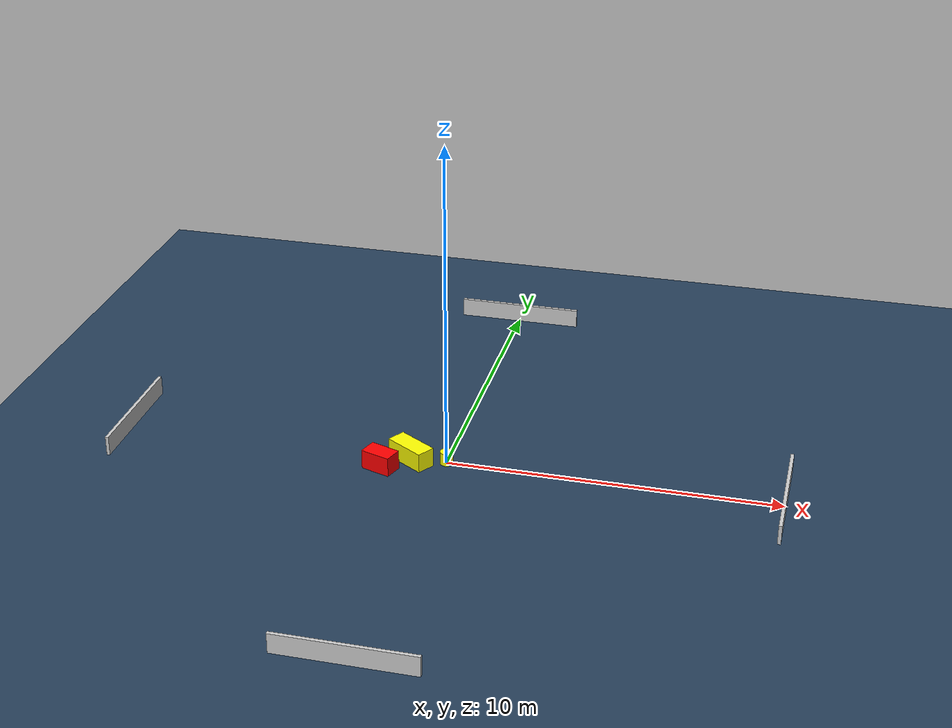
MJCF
<?xml version="1.0" ?>
<mujoco model="generated_environment">
  <option timestep="0.01" integrator="RK4" cone="elliptic"/>
  <default>
    <geom density="1"/>
  </default>
  <asset>
    <texture builtin="gradient" height="3072" name="skybox" rgb1="0.3 0.5 0.7" rgb2="0 0 0" type="skybox" width="512"/>
    <texture builtin="checker" height="300" name="groundplane" rgb1="0.2 0.3 0.4" rgb2="0.1 0.2 0.3" type="2d" width="300"/>
    <material name="groundplane" reflectance="0.2" texrepeat="5 5" texture="groundplane"/>
  </asset>
  <worldbody>
    <light dir="0 0 -1" directional="true" pos="0 0 1.5"/>
    <geom condim="3" friction="0.5 0.005 0.001" material="groundplane" name="floor" pos="0 0 0" size="0 0 0.05" type="plane"/>
    <body name="walls">
      <geom name="wall_1" condim="4" pos="-10.0 0.0 0.3" rgba="0.800000011920929 0.800000011920929 0.800000011920929 1.0" size="0.05 2.0 0.3" type="box"/>
      <geom name="wall_2" condim="4" pos="10.0 0.0 0.3" rgba="0.800000011920929 0.800000011920929 0.800000011920929 1.0" size="0.05 2.0 0.3" type="box"/>
      <geom name="wall_3" condim="4" pos="0.0 -10.0 0.3" rgba="0.800000011920929 0.800000011920929 0.800000011920929 1.0" size="2.0 0.05 0.3" type="box"/>
      <geom name="wall_4" condim="4" pos="0.0 10.0 0.3" rgba="0.800000011920929 0.800000011920929 0.800000011920929 1.0" size="2.0 0.05 0.3" type="box"/>
    </body>
    <body name="robot">
      <joint name="joint_x" type="slide" pos="0 0 0" axis="1 0 0"/>
      <joint name="joint_y" type="slide" pos="0 0 0" axis="0 1 0"/>
      <geom name="robot" type="cylinder" pos="0.0 0.0 0.2" size="0.2 0.2 0.0" mass="5.0" friction="1.0 0.005 0.0001" condim="4" rgba="1.0 1.0 0.0 1.0"/>
    </body>
    <body name="obstacle_1_movable">
      <geom name="obstacle_1_movable" condim="4" pos="-1.065268789678542 -0.12965377604068726 0.3" euler="0 0 147.7814185903467" friction="0.0 0.005 0.001" rgba="1.0 1.0 0.0 1.0" size="0.6675525043136932 0.2912999343981788 0.3" type="box" mass="0.1"/>
      <joint type="free"/>
    </body>
    <body name="obstacle_2_static">
      <geom name="obstacle_2_static" condim="4" pos="-1.8327397818622597 -0.757710276111147 0.3" euler="0 0 341.0205835068492" friction="0.0 0.005 0.001" rgba="1.0 0.0 0.0 1.0" size="0.4710573713555155 0.28326117662578204 0.3" type="box"/>
    </body>
  </worldbody>
  <actuator>
    <motor name="actuator_x" joint="joint_x" gear="1" ctrlrange="-1 1"/>
    <motor name="actuator_y" joint="joint_y" gear="1" ctrlrange="-1 1"/>
  </actuator>
</mujoco>
